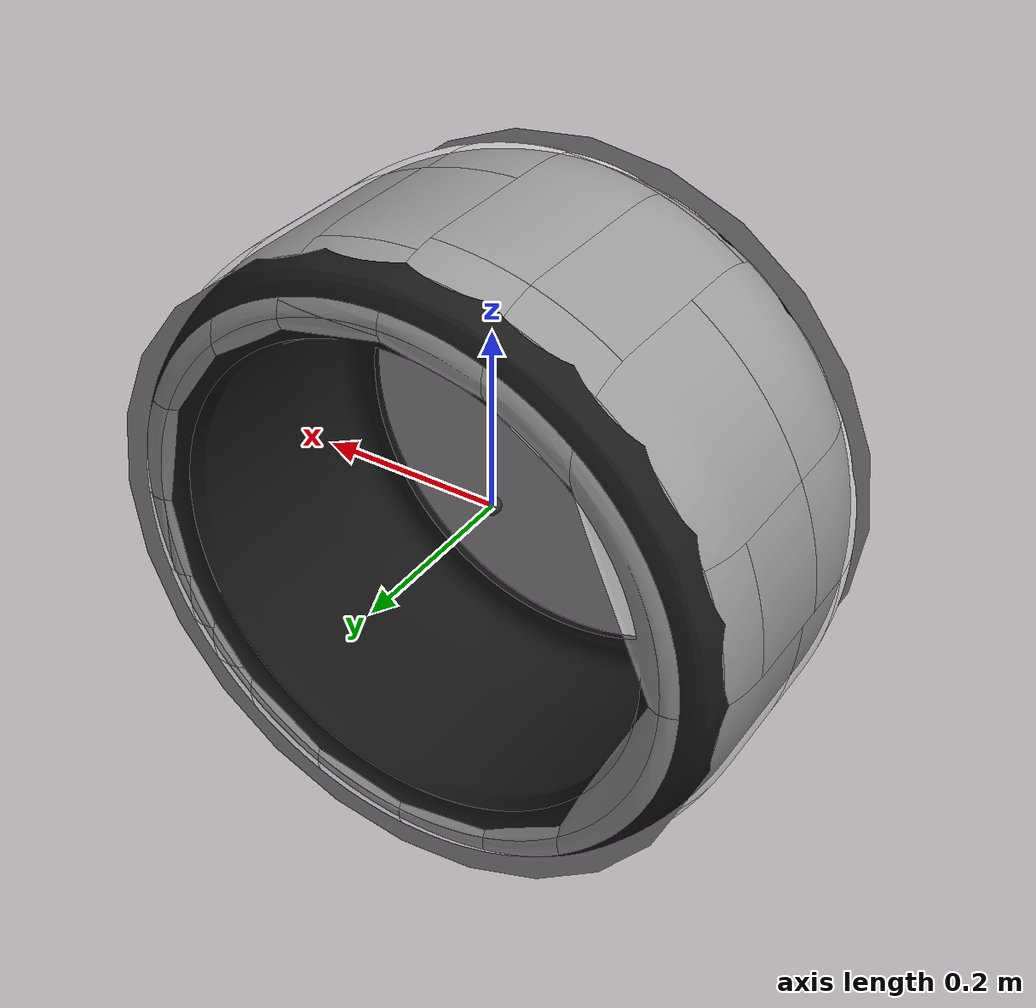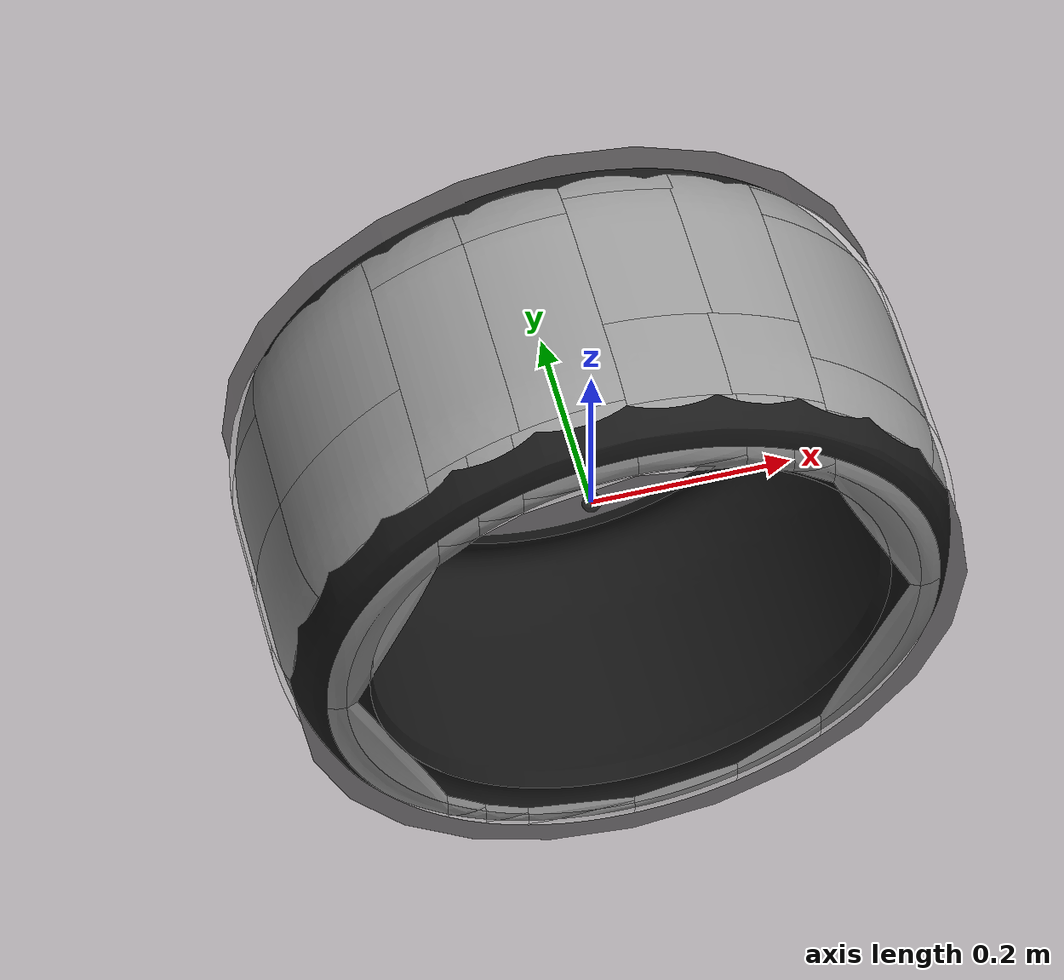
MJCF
<mujoco model="tire">
<!-- Copyright (c) 2024 Boston Dynamics AI Institute LLC. All rights reserved. -->
    <include file="tire_defs.xml" />
    <worldbody>
        <body name="tire">
            <joint name="tire_joint" type="free"/>
            <!-- https://en.wikipedia.org/wiki/List_of_moments_of_inertia -->
            <inertial pos="0 0 0" mass="15.3" diaginertia="0.57 0.96 0.57"/>

            <geom name="object_primitive_approx" type="cylinder" class="tire_visual" size="0.33 0.17" quat="1 1 0 0" rgba="0 0 0 0.5"/>
            <geom name="tire_visual" type="mesh" class="tire_visual" mesh="tire_visual" material="tire_black"/>
            <geom name="tire_0_collision" type="mesh" class="tire_collision" mesh="tire_0_collision"/>
            <geom name="tire_1_collision" type="mesh" class="tire_collision" mesh="tire_1_collision"/>
            <geom name="tire_2_collision" type="mesh" class="tire_collision" mesh="tire_2_collision"/>
            <geom name="tire_3_collision" type="mesh" class="tire_collision" mesh="tire_3_collision"/>
            <geom name="tire_4_collision" type="mesh" class="tire_collision" mesh="tire_4_collision"/>
            <geom name="tire_5_collision" type="mesh" class="tire_collision" mesh="tire_5_collision"/>
            <geom name="tire_6_collision" type="mesh" class="tire_collision" mesh="tire_6_collision"/>
            <geom name="tire_7_collision" type="mesh" class="tire_collision" mesh="tire_7_collision"/>
            <geom name="tire_8_collision" type="mesh" class="tire_collision" mesh="tire_8_collision"/>
            <geom name="tire_9_collision" type="mesh" class="tire_collision" mesh="tire_9_collision"/>
            <geom name="tire_10_collision" type="mesh" class="tire_collision" mesh="tire_10_collision"/>
            <geom name="tire_11_collision" type="mesh" class="tire_collision" mesh="tire_11_collision"/>
            <geom name="tire_12_collision" type="mesh" class="tire_collision" mesh="tire_12_collision"/>
            <geom name="tire_13_collision" type="mesh" class="tire_collision" mesh="tire_13_collision"/>
            <geom name="tire_14_collision" type="mesh" class="tire_collision" mesh="tire_14_collision"/>
            <geom name="tire_15_collision" type="mesh" class="tire_collision" mesh="tire_15_collision"/>
            <geom name="tire_16_collision" type="mesh" class="tire_collision" mesh="tire_16_collision"/>
            <geom name="tire_17_collision" type="mesh" class="tire_collision" mesh="tire_17_collision"/>
            <geom name="tire_18_collision" type="mesh" class="tire_collision" mesh="tire_18_collision"/>
            <geom name="tire_19_collision" type="mesh" class="tire_collision" mesh="tire_19_collision"/>
            <geom name="tire_20_collision" type="mesh" class="tire_collision" mesh="tire_20_collision"/>
            <geom name="tire_21_collision" type="mesh" class="tire_collision" mesh="tire_21_collision"/>
            <geom name="tire_22_collision" type="mesh" class="tire_collision" mesh="tire_22_collision"/>
            <geom name="tire_23_collision" type="mesh" class="tire_collision" mesh="tire_23_collision"/>
            <geom name="tire_24_collision" type="mesh" class="tire_collision" mesh="tire_24_collision"/>
            <geom name="tire_25_collision" type="mesh" class="tire_collision" mesh="tire_25_collision"/>
            <geom name="tire_26_collision" type="mesh" class="tire_collision" mesh="tire_26_collision"/>
            <geom name="tire_27_collision" type="mesh" class="tire_collision" mesh="tire_27_collision"/>
            <geom name="tire_28_collision" type="mesh" class="tire_collision" mesh="tire_28_collision"/>
            <geom name="tire_29_collision" type="mesh" class="tire_collision" mesh="tire_29_collision"/>
            <geom name="tire_30_collision" type="mesh" class="tire_collision" mesh="tire_30_collision"/>
            <geom name="tire_31_collision" type="mesh" class="tire_collision" mesh="tire_31_collision"/>
            <geom name="tire_32_collision" type="mesh" class="tire_collision" mesh="tire_32_collision"/>
            <geom name="tire_33_collision" type="mesh" class="tire_collision" mesh="tire_33_collision"/>
            <geom name="tire_34_collision" type="mesh" class="tire_collision" mesh="tire_34_collision"/>
            <geom name="tire_35_collision" type="mesh" class="tire_collision" mesh="tire_35_collision"/>
            <geom name="tire_36_collision" type="mesh" class="tire_collision" mesh="tire_36_collision"/>
            <geom name="tire_37_collision" type="mesh" class="tire_collision" mesh="tire_37_collision"/>
            <geom name="tire_38_collision" type="mesh" class="tire_collision" mesh="tire_38_collision"/>
            <geom name="tire_39_collision" type="mesh" class="tire_collision" mesh="tire_39_collision"/>
            <geom name="tire_40_collision" type="mesh" class="tire_collision" mesh="tire_40_collision"/>
            <geom name="tire_41_collision" type="mesh" class="tire_collision" mesh="tire_41_collision"/>
            <geom name="tire_42_collision" type="mesh" class="tire_collision" mesh="tire_42_collision"/>
            <geom name="tire_43_collision" type="mesh" class="tire_collision" mesh="tire_43_collision"/>
            <geom name="tire_44_collision" type="mesh" class="tire_collision" mesh="tire_44_collision"/>
            <geom name="tire_45_collision" type="mesh" class="tire_collision" mesh="tire_45_collision"/>
            <geom name="tire_46_collision" type="mesh" class="tire_collision" mesh="tire_46_collision"/>
            <geom name="tire_47_collision" type="mesh" class="tire_collision" mesh="tire_47_collision"/>
            <geom name="tire_48_collision" type="mesh" class="tire_collision" mesh="tire_48_collision"/>
            <geom name="tire_49_collision" type="mesh" class="tire_collision" mesh="tire_49_collision"/>
            <geom name="tire_50_collision" type="mesh" class="tire_collision" mesh="tire_50_collision"/>
            <geom name="tire_51_collision" type="mesh" class="tire_collision" mesh="tire_51_collision"/>
            <geom name="tire_52_collision" type="mesh" class="tire_collision" mesh="tire_52_collision"/>
            <geom name="tire_53_collision" type="mesh" class="tire_collision" mesh="tire_53_collision"/>
            <geom name="tire_54_collision" type="mesh" class="tire_collision" mesh="tire_54_collision"/>
            <geom name="tire_55_collision" type="mesh" class="tire_collision" mesh="tire_55_collision"/>
            <geom name="tire_56_collision" type="mesh" class="tire_collision" mesh="tire_56_collision"/>
            <geom name="tire_57_collision" type="mesh" class="tire_collision" mesh="tire_57_collision"/>
            <geom name="tire_58_collision" type="mesh" class="tire_collision" mesh="tire_58_collision"/>
            <geom name="tire_59_collision" type="mesh" class="tire_collision" mesh="tire_59_collision"/>
            <geom name="tire_60_collision" type="mesh" class="tire_collision" mesh="tire_60_collision"/>
            <geom name="tire_61_collision" type="mesh" class="tire_collision" mesh="tire_61_collision"/>
            <geom name="tire_62_collision" type="mesh" class="tire_collision" mesh="tire_62_collision"/>
            <geom name="tire_63_collision" type="mesh" class="tire_collision" mesh="tire_63_collision"/>
            <geom name="tire_64_collision" type="mesh" class="tire_collision" mesh="tire_64_collision"/>
            <geom name="tire_65_collision" type="mesh" class="tire_collision" mesh="tire_65_collision"/>
            <geom name="tire_66_collision" type="mesh" class="tire_collision" mesh="tire_66_collision"/>
            <geom name="tire_67_collision" type="mesh" class="tire_collision" mesh="tire_67_collision"/>
            <geom name="tire_68_collision" type="mesh" class="tire_collision" mesh="tire_68_collision"/>
            <geom name="tire_69_collision" type="mesh" class="tire_collision" mesh="tire_69_collision"/>
            <geom name="tire_70_collision" type="mesh" class="tire_collision" mesh="tire_70_collision"/>
            <geom name="tire_71_collision" type="mesh" class="tire_collision" mesh="tire_71_collision"/>
            <geom name="tire_72_collision" type="mesh" class="tire_collision" mesh="tire_72_collision"/>
            <geom name="tire_73_collision" type="mesh" class="tire_collision" mesh="tire_73_collision"/>
            <geom name="tire_74_collision" type="mesh" class="tire_collision" mesh="tire_74_collision"/>
            <geom name="tire_75_collision" type="mesh" class="tire_collision" mesh="tire_75_collision"/>
            <geom name="tire_76_collision" type="mesh" class="tire_collision" mesh="tire_76_collision"/>
            <geom name="tire_77_collision" type="mesh" class="tire_collision" mesh="tire_77_collision"/>
            <geom name="tire_78_collision" type="mesh" class="tire_collision" mesh="tire_78_collision"/>
            <geom name="tire_79_collision" type="mesh" class="tire_collision" mesh="tire_79_collision"/>
            <geom name="tire_80_collision" type="mesh" class="tire_collision" mesh="tire_80_collision"/>
            <site name="trace_tire" pos="0 0 0" size="0.01"/>

            <site name="site_object" pos="0 0 0" size="0.01"/>
        </body>
    </worldbody>

</mujoco>

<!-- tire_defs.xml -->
<mujoco>
  <!-- Copyright (c) 2025 Boston Dynamics AI Institute LLC. All rights reserved. -->
  <!-- Tire defaults and assets. Requires parent to set assetdir to models/meshes/. -->

  <default>
    <default class="tire_visual">
      <geom type="mesh" contype="0" conaffinity="0" group="2"/>
    </default>
    <default class="tire_collision">
      <geom friction="1.15 1.0" priority="6" material="tire_semi_transparent"/>
    </default>
  </default>

  <asset>
      <material name="tire_black" rgba="0.25 0.25 0.25 1" metallic="0.0" roughness="1.0"/>
      <material name="tire_semi_transparent" rgba="1 1 1 0.5" metallic="0.0" roughness="1.0"/>
      <mesh name="tire_visual" file="objects/tire/meshes/visual/tire.obj"/>
      <mesh name="tire_0_collision" file="objects/tire/meshes/collision/part_0.obj"/>
      <mesh name="tire_1_collision" file="objects/tire/meshes/collision/part_1.obj"/>
      <mesh name="tire_2_collision" file="objects/tire/meshes/collision/part_2.obj"/>
      <mesh name="tire_3_collision" file="objects/tire/meshes/collision/part_3.obj"/>
      <mesh name="tire_4_collision" file="objects/tire/meshes/collision/part_4.obj"/>
      <mesh name="tire_5_collision" file="objects/tire/meshes/collision/part_5.obj"/>
      <mesh name="tire_6_collision" file="objects/tire/meshes/collision/part_6.obj"/>
      <mesh name="tire_7_collision" file="objects/tire/meshes/collision/part_7.obj"/>
      <mesh name="tire_8_collision" file="objects/tire/meshes/collision/part_8.obj"/>
      <mesh name="tire_9_collision" file="objects/tire/meshes/collision/part_9.obj"/>
      <mesh name="tire_10_collision" file="objects/tire/meshes/collision/part_10.obj"/>
      <mesh name="tire_11_collision" file="objects/tire/meshes/collision/part_11.obj"/>
      <mesh name="tire_12_collision" file="objects/tire/meshes/collision/part_12.obj"/>
      <mesh name="tire_13_collision" file="objects/tire/meshes/collision/part_13.obj"/>
      <mesh name="tire_14_collision" file="objects/tire/meshes/collision/part_14.obj"/>
      <mesh name="tire_15_collision" file="objects/tire/meshes/collision/part_15.obj"/>
      <mesh name="tire_16_collision" file="objects/tire/meshes/collision/part_16.obj"/>
      <mesh name="tire_17_collision" file="objects/tire/meshes/collision/part_17.obj"/>
      <mesh name="tire_18_collision" file="objects/tire/meshes/collision/part_18.obj"/>
      <mesh name="tire_19_collision" file="objects/tire/meshes/collision/part_19.obj"/>
      <mesh name="tire_20_collision" file="objects/tire/meshes/collision/part_20.obj"/>
      <mesh name="tire_21_collision" file="objects/tire/meshes/collision/part_21.obj"/>
      <mesh name="tire_22_collision" file="objects/tire/meshes/collision/part_22.obj"/>
      <mesh name="tire_23_collision" file="objects/tire/meshes/collision/part_23.obj"/>
      <mesh name="tire_24_collision" file="objects/tire/meshes/collision/part_24.obj"/>
      <mesh name="tire_25_collision" file="objects/tire/meshes/collision/part_25.obj"/>
      <mesh name="tire_26_collision" file="objects/tire/meshes/collision/part_26.obj"/>
      <mesh name="tire_27_collision" file="objects/tire/meshes/collision/part_27.obj"/>
      <mesh name="tire_28_collision" file="objects/tire/meshes/collision/part_28.obj"/>
      <mesh name="tire_29_collision" file="objects/tire/meshes/collision/part_29.obj"/>
      <mesh name="tire_30_collision" file="objects/tire/meshes/collision/part_30.obj"/>
      <mesh name="tire_31_collision" file="objects/tire/meshes/collision/part_31.obj"/>
      <mesh name="tire_32_collision" file="objects/tire/meshes/collision/part_32.obj"/>
      <mesh name="tire_33_collision" file="objects/tire/meshes/collision/part_33.obj"/>
      <mesh name="tire_34_collision" file="objects/tire/meshes/collision/part_34.obj"/>
      <mesh name="tire_35_collision" file="objects/tire/meshes/collision/part_35.obj"/>
      <mesh name="tire_36_collision" file="objects/tire/meshes/collision/part_36.obj"/>
      <mesh name="tire_37_collision" file="objects/tire/meshes/collision/part_37.obj"/>
      <mesh name="tire_38_collision" file="objects/tire/meshes/collision/part_38.obj"/>
      <mesh name="tire_39_collision" file="objects/tire/meshes/collision/part_39.obj"/>
      <mesh name="tire_40_collision" file="objects/tire/meshes/collision/part_40.obj"/>
      <mesh name="tire_41_collision" file="objects/tire/meshes/collision/part_41.obj"/>
      <mesh name="tire_42_collision" file="objects/tire/meshes/collision/part_42.obj"/>
      <mesh name="tire_43_collision" file="objects/tire/meshes/collision/part_43.obj"/>
      <mesh name="tire_44_collision" file="objects/tire/meshes/collision/part_44.obj"/>
      <mesh name="tire_45_collision" file="objects/tire/meshes/collision/part_45.obj"/>
      <mesh name="tire_46_collision" file="objects/tire/meshes/collision/part_46.obj"/>
      <mesh name="tire_47_collision" file="objects/tire/meshes/collision/part_47.obj"/>
      <mesh name="tire_48_collision" file="objects/tire/meshes/collision/part_48.obj"/>
      <mesh name="tire_49_collision" file="objects/tire/meshes/collision/part_49.obj"/>
      <mesh name="tire_50_collision" file="objects/tire/meshes/collision/part_50.obj"/>
      <mesh name="tire_51_collision" file="objects/tire/meshes/collision/part_51.obj"/>
      <mesh name="tire_52_collision" file="objects/tire/meshes/collision/part_52.obj"/>
      <mesh name="tire_53_collision" file="objects/tire/meshes/collision/part_53.obj"/>
      <mesh name="tire_54_collision" file="objects/tire/meshes/collision/part_54.obj"/>
      <mesh name="tire_55_collision" file="objects/tire/meshes/collision/part_55.obj"/>
      <mesh name="tire_56_collision" file="objects/tire/meshes/collision/part_56.obj"/>
      <mesh name="tire_57_collision" file="objects/tire/meshes/collision/part_57.obj"/>
      <mesh name="tire_58_collision" file="objects/tire/meshes/collision/part_58.obj"/>
      <mesh name="tire_59_collision" file="objects/tire/meshes/collision/part_59.obj"/>
      <mesh name="tire_60_collision" file="objects/tire/meshes/collision/part_60.obj"/>
      <mesh name="tire_61_collision" file="objects/tire/meshes/collision/part_61.obj"/>
      <mesh name="tire_62_collision" file="objects/tire/meshes/collision/part_62.obj"/>
      <mesh name="tire_63_collision" file="objects/tire/meshes/collision/part_63.obj"/>
      <mesh name="tire_64_collision" file="objects/tire/meshes/collision/part_64.obj"/>
      <mesh name="tire_65_collision" file="objects/tire/meshes/collision/part_65.obj"/>
      <mesh name="tire_66_collision" file="objects/tire/meshes/collision/part_66.obj"/>
      <mesh name="tire_67_collision" file="objects/tire/meshes/collision/part_67.obj"/>
      <mesh name="tire_68_collision" file="objects/tire/meshes/collision/part_68.obj"/>
      <mesh name="tire_69_collision" file="objects/tire/meshes/collision/part_69.obj"/>
      <mesh name="tire_70_collision" file="objects/tire/meshes/collision/part_70.obj"/>
      <mesh name="tire_71_collision" file="objects/tire/meshes/collision/part_71.obj"/>
      <mesh name="tire_72_collision" file="objects/tire/meshes/collision/part_72.obj"/>
      <mesh name="tire_73_collision" file="objects/tire/meshes/collision/part_73.obj"/>
      <mesh name="tire_74_collision" file="objects/tire/meshes/collision/part_74.obj"/>
      <mesh name="tire_75_collision" file="objects/tire/meshes/collision/part_75.obj"/>
      <mesh name="tire_76_collision" file="objects/tire/meshes/collision/part_76.obj"/>
      <mesh name="tire_77_collision" file="objects/tire/meshes/collision/part_77.obj"/>
      <mesh name="tire_78_collision" file="objects/tire/meshes/collision/part_78.obj"/>
      <mesh name="tire_79_collision" file="objects/tire/meshes/collision/part_79.obj"/>
      <mesh name="tire_80_collision" file="objects/tire/meshes/collision/part_80.obj"/>
  </asset>
</mujoco>
